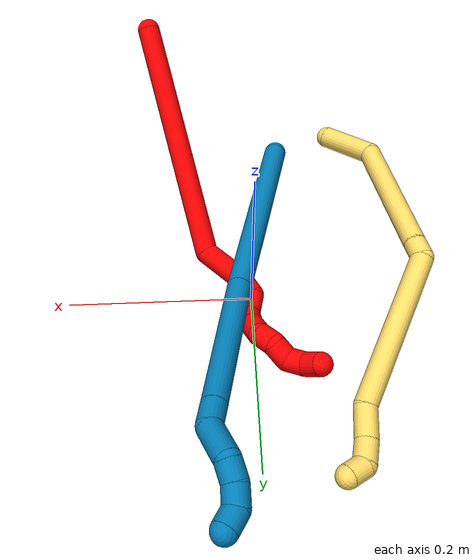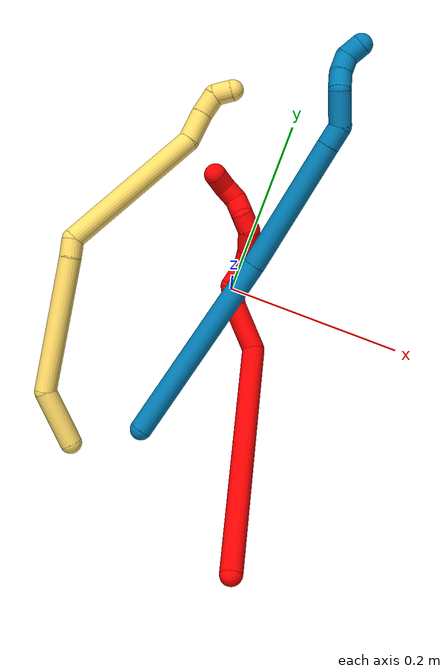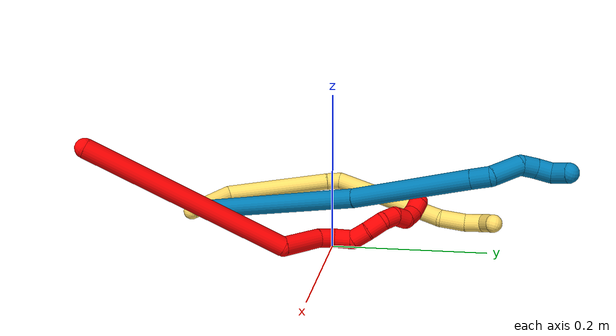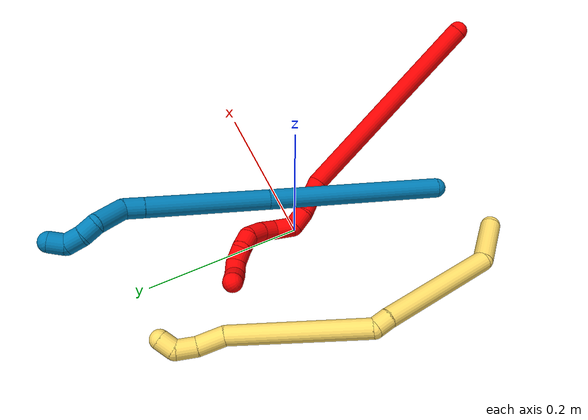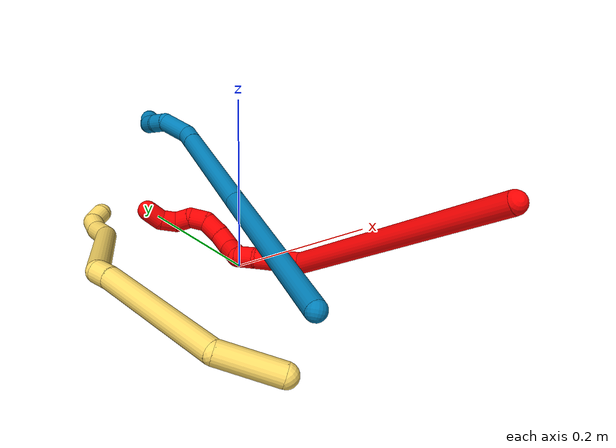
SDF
<sdf version="1.7">
 <world name="default">
  <model name="2">
   <static>0</static>
   <link name="2">
    <collision name="collision-cylinder-e_1_1_4">
     <pose>-0.055804 0.05668 -0.109234 -2.66295 -0.425722 1.44984</pose>
     <geometry><cylinder><radius>0.0125</radius><length>0.27025</length></cylinder></geometry>
     <surface>
      <friction><ode><mu>1.16</mu><mu2>1.16</mu2><slip1>0</slip1><slip2>0</slip2></ode></friction>
      <contact><ode><kp>1e+06</kp><kd>1</kd><max_vel>0</max_vel><min_depth>0.001</min_depth></ode></contact>
     </surface>
    </collision>
    <visual name="visual-cylinder-e_1_1_4">
     <pose>-0.055804 0.05668 -0.109234 -2.66295 -0.425722 1.44984</pose>
     <geometry><cylinder><radius>0.0125</radius><length>0.27025</length></cylinder></geometry>
     <material><ambient>1 0 0 1</ambient></material>
    </visual>
    <collision name="collision-cylinder-e_2_4_5">
     <pose>-0.126371 0.135037 -0.224463 -1.84061 -0.580877 0.748519</pose>
     <geometry><cylinder><radius>0.0125</radius><length>0.053807</length></cylinder></geometry>
     <surface>
      <friction><ode><mu>1.16</mu><mu2>1.16</mu2><slip1>0</slip1><slip2>0</slip2></ode></friction>
      <contact><ode><kp>1e+06</kp><kd>1</kd><max_vel>0</max_vel><min_depth>0.001</min_depth></ode></contact>
     </surface>
    </collision>
    <visual name="visual-cylinder-e_2_4_5">
     <pose>-0.126371 0.135037 -0.224463 -1.84061 -0.580877 0.748519</pose>
     <geometry><cylinder><radius>0.0125</radius><length>0.053807</length></cylinder></geometry>
     <material><ambient>1 0 0 1</ambient></material>
    </visual>
    <collision name="collision-cylinder-e_3_5_6">
     <pose>-0.146359 0.165475 -0.23595 -2.13067 -0.467871 0.813199</pose>
     <geometry><cylinder><radius>0.0125</radius><length>0.023171</length></cylinder></geometry>
     <surface>
      <friction><ode><mu>1.16</mu><mu2>1.16</mu2><slip1>0</slip1><slip2>0</slip2></ode></friction>
      <contact><ode><kp>1e+06</kp><kd>1</kd><max_vel>0</max_vel><min_depth>0.001</min_depth></ode></contact>
     </surface>
    </collision>
    <visual name="visual-cylinder-e_3_5_6">
     <pose>-0.146359 0.165475 -0.23595 -2.13067 -0.467871 0.813199</pose>
     <geometry><cylinder><radius>0.0125</radius><length>0.023171</length></cylinder></geometry>
     <material><ambient>1 0 0 1</ambient></material>
    </visual>
    <collision name="collision-cylinder-e_4_6_7">
     <pose>-0.148529 0.182412 -0.250941 -2.43099 0.239041 -0.626034</pose>
     <geometry><cylinder><radius>0.0125</radius><length>0.0258</length></cylinder></geometry>
     <surface>
      <friction><ode><mu>1.16</mu><mu2>1.16</mu2><slip1>0</slip1><slip2>0</slip2></ode></friction>
      <contact><ode><kp>1e+06</kp><kd>1</kd><max_vel>0</max_vel><min_depth>0.001</min_depth></ode></contact>
     </surface>
    </collision>
    <visual name="visual-cylinder-e_4_6_7">
     <pose>-0.148529 0.182412 -0.250941 -2.43099 0.239041 -0.626034</pose>
     <geometry><cylinder><radius>0.0125</radius><length>0.0258</length></cylinder></geometry>
     <material><ambient>1 0 0 1</ambient></material>
    </visual>
    <collision name="collision-cylinder-e_5_7_8">
     <pose>-0.14301 0.201345 -0.262805 -1.78715 0.220135 -0.273173</pose>
     <geometry><cylinder><radius>0.0125</radius><length>0.022574</length></cylinder></geometry>
     <surface>
      <friction><ode><mu>1.16</mu><mu2>1.16</mu2><slip1>0</slip1><slip2>0</slip2></ode></friction>
      <contact><ode><kp>1e+06</kp><kd>1</kd><max_vel>0</max_vel><min_depth>0.001</min_depth></ode></contact>
     </surface>
    </collision>
    <visual name="visual-cylinder-e_5_7_8">
     <pose>-0.14301 0.201345 -0.262805 -1.78715 0.220135 -0.273173</pose>
     <geometry><cylinder><radius>0.0125</radius><length>0.022574</length></cylinder></geometry>
     <material><ambient>1 0 0 1</ambient></material>
    </visual>
    <collision name="collision-cylinder-e_6_8_9">
     <pose>-0.139883 0.223964 -0.266607 -1.69142 0.055409 -0.062526</pose>
     <geometry><cylinder><radius>0.0125</radius><length>0.023932</length></cylinder></geometry>
     <surface>
      <friction><ode><mu>1.16</mu><mu2>1.16</mu2><slip1>0</slip1><slip2>0</slip2></ode></friction>
      <contact><ode><kp>1e+06</kp><kd>1</kd><max_vel>0</max_vel><min_depth>0.001</min_depth></ode></contact>
     </surface>
    </collision>
    <visual name="visual-cylinder-e_6_8_9">
     <pose>-0.139883 0.223964 -0.266607 -1.69142 0.055409 -0.062526</pose>
     <geometry><cylinder><radius>0.0125</radius><length>0.023932</length></cylinder></geometry>
     <material><ambient>1 0 0 1</ambient></material>
    </visual>
    <collision name="collision-cylinder-e_7_9_10">
     <pose>-0.143989 0.244646 -0.269354 -1.71808 -0.490996 0.565375</pose>
     <geometry><cylinder><radius>0.0125</radius><length>0.020225</length></cylinder></geometry>
     <surface>
      <friction><ode><mu>1.16</mu><mu2>1.16</mu2><slip1>0</slip1><slip2>0</slip2></ode></friction>
      <contact><ode><kp>1e+06</kp><kd>1</kd><max_vel>0</max_vel><min_depth>0.001</min_depth></ode></contact>
     </surface>
    </collision>
    <visual name="visual-cylinder-e_7_9_10">
     <pose>-0.143989 0.244646 -0.269354 -1.71808 -0.490996 0.565375</pose>
     <geometry><cylinder><radius>0.0125</radius><length>0.020225</length></cylinder></geometry>
     <material><ambient>1 0 0 1</ambient></material>
    </visual>
    <collision name="collision-cylinder-e_8_10_11">
     <pose>-0.155801 0.258759 -0.275455 -2.30686 -0.77872 1.49326</pose>
     <geometry><cylinder><radius>0.0125</radius><length>0.02006</length></cylinder></geometry>
     <surface>
      <friction><ode><mu>1.16</mu><mu2>1.16</mu2><slip1>0</slip1><slip2>0</slip2></ode></friction>
      <contact><ode><kp>1e+06</kp><kd>1</kd><max_vel>0</max_vel><min_depth>0.001</min_depth></ode></contact>
     </surface>
    </collision>
    <visual name="visual-cylinder-e_8_10_11">
     <pose>-0.155801 0.258759 -0.275455 -2.30686 -0.77872 1.49326</pose>
     <geometry><cylinder><radius>0.0125</radius><length>0.02006</length></cylinder></geometry>
     <material><ambient>1 0 0 1</ambient></material>
    </visual>
    <collision name="collision-cylinder-e_9_11_12">
     <pose>-0.169163 0.271671 -0.278752 -1.37694 -0.682848 0.568869</pose>
     <geometry><cylinder><radius>0.0125</radius><length>0.020023</length></cylinder></geometry>
     <surface>
      <friction><ode><mu>1.16</mu><mu2>1.16</mu2><slip1>0</slip1><slip2>0</slip2></ode></friction>
      <contact><ode><kp>1e+06</kp><kd>1</kd><max_vel>0</max_vel><min_depth>0.001</min_depth></ode></contact>
     </surface>
    </collision>
    <visual name="visual-cylinder-e_9_11_12">
     <pose>-0.169163 0.271671 -0.278752 -1.37694 -0.682848 0.568869</pose>
     <geometry><cylinder><radius>0.0125</radius><length>0.020023</length></cylinder></geometry>
     <material><ambient>1 0 0 1</ambient></material>
    </visual>
    <collision name="collision-cylinder-e_10_12_2">
     <pose>-0.177759 0.288269 -0.273279 -1.15378 -0.228027 0.148756</pose>
     <geometry><cylinder><radius>0.0125</radius><length>0.020159</length></cylinder></geometry>
     <surface>
      <friction><ode><mu>1.16</mu><mu2>1.16</mu2><slip1>0</slip1><slip2>0</slip2></ode></friction>
      <contact><ode><kp>1e+06</kp><kd>1</kd><max_vel>0</max_vel><min_depth>0.001</min_depth></ode></contact>
     </surface>
    </collision>
    <visual name="visual-cylinder-e_10_12_2">
     <pose>-0.177759 0.288269 -0.273279 -1.15378 -0.228027 0.148756</pose>
     <geometry><cylinder><radius>0.0125</radius><length>0.020159</length></cylinder></geometry>
     <material><ambient>1 0 0 1</ambient></material>
    </visual>
    <collision name="collision-sphere-2">
     <pose>-0.180038 0.297247 -0.269302 0 -0 0</pose>
     <geometry><sphere><radius>0.0125</radius></sphere></geometry>
     <surface>
      <friction><ode><mu>1.16</mu><mu2>1.16</mu2><slip1>0</slip1><slip2>0</slip2></ode></friction>
      <contact><ode><kp>1e+06</kp><kd>1</kd><max_vel>0</max_vel><min_depth>0.001</min_depth></ode></contact>
     </surface>
    </collision>
    <visual name="visual-sphere-2">
     <pose>-0.180038 0.297247 -0.269302 0 -0 0</pose>
     <geometry><sphere><radius>0.0125</radius></sphere></geometry>
     <material><ambient>1 0 0 1</ambient></material>
    </visual>
    <collision name="collision-sphere-12">
     <pose>-0.175481 0.279292 -0.277256 0 -0 0</pose>
     <geometry><sphere><radius>0.0125</radius></sphere></geometry>
     <surface>
      <friction><ode><mu>1.16</mu><mu2>1.16</mu2><slip1>0</slip1><slip2>0</slip2></ode></friction>
      <contact><ode><kp>1e+06</kp><kd>1</kd><max_vel>0</max_vel><min_depth>0.001</min_depth></ode></contact>
     </surface>
    </collision>
    <visual name="visual-sphere-12">
     <pose>-0.175481 0.279292 -0.277256 0 -0 0</pose>
     <geometry><sphere><radius>0.0125</radius></sphere></geometry>
     <material><ambient>1 0 0 1</ambient></material>
    </visual>
    <collision name="collision-sphere-11">
     <pose>-0.162846 0.26405 -0.280249 0 -0 0</pose>
     <geometry><sphere><radius>0.0125</radius></sphere></geometry>
     <surface>
      <friction><ode><mu>1.16</mu><mu2>1.16</mu2><slip1>0</slip1><slip2>0</slip2></ode></friction>
      <contact><ode><kp>1e+06</kp><kd>1</kd><max_vel>0</max_vel><min_depth>0.001</min_depth></ode></contact>
     </surface>
    </collision>
    <visual name="visual-sphere-11">
     <pose>-0.162846 0.26405 -0.280249 0 -0 0</pose>
     <geometry><sphere><radius>0.0125</radius></sphere></geometry>
     <material><ambient>1 0 0 1</ambient></material>
    </visual>
    <collision name="collision-sphere-10">
     <pose>-0.148757 0.253468 -0.270662 0 -0 0</pose>
     <geometry><sphere><radius>0.0125</radius></sphere></geometry>
     <surface>
      <friction><ode><mu>1.16</mu><mu2>1.16</mu2><slip1>0</slip1><slip2>0</slip2></ode></friction>
      <contact><ode><kp>1e+06</kp><kd>1</kd><max_vel>0</max_vel><min_depth>0.001</min_depth></ode></contact>
     </surface>
    </collision>
    <visual name="visual-sphere-10">
     <pose>-0.148757 0.253468 -0.270662 0 -0 0</pose>
     <geometry><sphere><radius>0.0125</radius></sphere></geometry>
     <material><ambient>1 0 0 1</ambient></material>
    </visual>
    <collision name="collision-sphere-9">
     <pose>-0.13922 0.235825 -0.268045 0 -0 0</pose>
     <geometry><sphere><radius>0.0125</radius></sphere></geometry>
     <surface>
      <friction><ode><mu>1.16</mu><mu2>1.16</mu2><slip1>0</slip1><slip2>0</slip2></ode></friction>
      <contact><ode><kp>1e+06</kp><kd>1</kd><max_vel>0</max_vel><min_depth>0.001</min_depth></ode></contact>
     </surface>
    </collision>
    <visual name="visual-sphere-9">
     <pose>-0.13922 0.235825 -0.268045 0 -0 0</pose>
     <geometry><sphere><radius>0.0125</radius></sphere></geometry>
     <material><ambient>1 0 0 1</ambient></material>
    </visual>
    <collision name="collision-sphere-4">
     <pose>-0.111607 0.11336 -0.218468 0 -0 0</pose>
     <geometry><sphere><radius>0.0125</radius></sphere></geometry>
     <surface>
      <friction><ode><mu>1.16</mu><mu2>1.16</mu2><slip1>0</slip1><slip2>0</slip2></ode></friction>
      <contact><ode><kp>1e+06</kp><kd>1</kd><max_vel>0</max_vel><min_depth>0.001</min_depth></ode></contact>
     </surface>
    </collision>
    <visual name="visual-sphere-4">
     <pose>-0.111607 0.11336 -0.218468 0 -0 0</pose>
     <geometry><sphere><radius>0.0125</radius></sphere></geometry>
     <material><ambient>1 0 0 1</ambient></material>
    </visual>
    <collision name="collision-sphere-1">
     <geometry><sphere><radius>0.0125</radius></sphere></geometry>
     <surface>
      <friction><ode><mu>1.16</mu><mu2>1.16</mu2><slip1>0</slip1><slip2>0</slip2></ode></friction>
      <contact><ode><kp>1e+06</kp><kd>1</kd><max_vel>0</max_vel><min_depth>0.001</min_depth></ode></contact>
     </surface>
    </collision>
    <visual name="visual-sphere-1">
     <geometry><sphere><radius>0.0125</radius></sphere></geometry>
     <material><ambient>1 0 0 1</ambient></material>
    </visual>
    <collision name="collision-sphere-8">
     <pose>-0.140546 0.212103 -0.26517 0 -0 0</pose>
     <geometry><sphere><radius>0.0125</radius></sphere></geometry>
     <surface>
      <friction><ode><mu>1.16</mu><mu2>1.16</mu2><slip1>0</slip1><slip2>0</slip2></ode></friction>
      <contact><ode><kp>1e+06</kp><kd>1</kd><max_vel>0</max_vel><min_depth>0.001</min_depth></ode></contact>
     </surface>
    </collision>
    <visual name="visual-sphere-8">
     <pose>-0.140546 0.212103 -0.26517 0 -0 0</pose>
     <geometry><sphere><radius>0.0125</radius></sphere></geometry>
     <material><ambient>1 0 0 1</ambient></material>
    </visual>
    <collision name="collision-sphere-5">
     <pose>-0.141134 0.156714 -0.230458 0 -0 0</pose>
     <geometry><sphere><radius>0.0125</radius></sphere></geometry>
     <surface>
      <friction><ode><mu>1.16</mu><mu2>1.16</mu2><slip1>0</slip1><slip2>0</slip2></ode></friction>
      <contact><ode><kp>1e+06</kp><kd>1</kd><max_vel>0</max_vel><min_depth>0.001</min_depth></ode></contact>
     </surface>
    </collision>
    <visual name="visual-sphere-5">
     <pose>-0.141134 0.156714 -0.230458 0 -0 0</pose>
     <geometry><sphere><radius>0.0125</radius></sphere></geometry>
     <material><ambient>1 0 0 1</ambient></material>
    </visual>
    <collision name="collision-sphere-6">
     <pose>-0.151584 0.174237 -0.241441 0 -0 0</pose>
     <geometry><sphere><radius>0.0125</radius></sphere></geometry>
     <surface>
      <friction><ode><mu>1.16</mu><mu2>1.16</mu2><slip1>0</slip1><slip2>0</slip2></ode></friction>
      <contact><ode><kp>1e+06</kp><kd>1</kd><max_vel>0</max_vel><min_depth>0.001</min_depth></ode></contact>
     </surface>
    </collision>
    <visual name="visual-sphere-6">
     <pose>-0.151584 0.174237 -0.241441 0 -0 0</pose>
     <geometry><sphere><radius>0.0125</radius></sphere></geometry>
     <material><ambient>1 0 0 1</ambient></material>
    </visual>
    <collision name="collision-sphere-7">
     <pose>-0.145475 0.190587 -0.260441 0 -0 0</pose>
     <geometry><sphere><radius>0.0125</radius></sphere></geometry>
     <surface>
      <friction><ode><mu>1.16</mu><mu2>1.16</mu2><slip1>0</slip1><slip2>0</slip2></ode></friction>
      <contact><ode><kp>1e+06</kp><kd>1</kd><max_vel>0</max_vel><min_depth>0.001</min_depth></ode></contact>
     </surface>
    </collision>
    <visual name="visual-sphere-7">
     <pose>-0.145475 0.190587 -0.260441 0 -0 0</pose>
     <geometry><sphere><radius>0.0125</radius></sphere></geometry>
     <material><ambient>1 0 0 1</ambient></material>
    </visual>
    <inertial>
     <pose>-0.097376 0.124837 -0.175833 0 -0 0</pose>
     <mass>0.5</mass>
     <inertia>
      <ixx>0.001695</ixx>
      <ixy>0</ixy>
      <ixz>0</ixz>
      <iyy>0.001668</iyy>
      <iyz>0</iyz>
      <izz>-4.4e-05</izz>
     </inertia>
    </inertial>
   </link>
   <pose>0.106268 -0.285487 0.142715 0.739153 -0.54938 0.033987</pose>
  </model>
  <model name="5">
   <static>0</static>
   <link name="5">
    <collision name="collision-cylinder-e_1_1_4">
     <pose>-0.019994 0.015272 0.021809 -0.610896 -0.644107 0.209651</pose>
     <geometry><cylinder><radius>0.0125</radius><length>0.066592</length></cylinder></geometry>
     <surface>
      <friction><ode><mu>1.16</mu><mu2>1.16</mu2><slip1>0</slip1><slip2>0</slip2></ode></friction>
      <contact><ode><kp>1e+06</kp><kd>1</kd><max_vel>0</max_vel><min_depth>0.001</min_depth></ode></contact>
     </surface>
    </collision>
    <visual name="visual-cylinder-e_1_1_4">
     <pose>-0.019994 0.015272 0.021809 -0.610896 -0.644107 0.209651</pose>
     <geometry><cylinder><radius>0.0125</radius><length>0.066592</length></cylinder></geometry>
     <material><ambient>1 0.858824 0.4 1</ambient></material>
    </visual>
    <collision name="collision-cylinder-e_2_4_5">
     <pose>-0.056509 0.098153 0.075447 -1.1308 -0.217595 0.13839</pose>
     <geometry><cylinder><radius>0.0125</radius><length>0.153062</length></cylinder></geometry>
     <surface>
      <friction><ode><mu>1.16</mu><mu2>1.16</mu2><slip1>0</slip1><slip2>0</slip2></ode></friction>
      <contact><ode><kp>1e+06</kp><kd>1</kd><max_vel>0</max_vel><min_depth>0.001</min_depth></ode></contact>
     </surface>
    </collision>
    <visual name="visual-cylinder-e_2_4_5">
     <pose>-0.056509 0.098153 0.075447 -1.1308 -0.217595 0.13839</pose>
     <geometry><cylinder><radius>0.0125</radius><length>0.153062</length></cylinder></geometry>
     <material><ambient>1 0.858824 0.4 1</ambient></material>
    </visual>
    <collision name="collision-cylinder-e_3_5_6">
     <pose>-0.0762 0.175 0.111051 -1.18284 -0.307473 0.207398</pose>
     <geometry><cylinder><radius>0.0125</radius><length>0.020943</length></cylinder></geometry>
     <surface>
      <friction><ode><mu>1.16</mu><mu2>1.16</mu2><slip1>0</slip1><slip2>0</slip2></ode></friction>
      <contact><ode><kp>1e+06</kp><kd>1</kd><max_vel>0</max_vel><min_depth>0.001</min_depth></ode></contact>
     </surface>
    </collision>
    <visual name="visual-cylinder-e_3_5_6">
     <pose>-0.0762 0.175 0.111051 -1.18284 -0.307473 0.207398</pose>
     <geometry><cylinder><radius>0.0125</radius><length>0.020943</length></cylinder></geometry>
     <material><ambient>1 0.858824 0.4 1</ambient></material>
    </visual>
    <collision name="collision-cylinder-e_4_6_7">
     <pose>-0.0599 0.269412 0.104506 -1.69138 0.223145 -0.251532</pose>
     <geometry><cylinder><radius>0.0125</radius><length>0.175954</length></cylinder></geometry>
     <surface>
      <friction><ode><mu>1.16</mu><mu2>1.16</mu2><slip1>0</slip1><slip2>0</slip2></ode></friction>
      <contact><ode><kp>1e+06</kp><kd>1</kd><max_vel>0</max_vel><min_depth>0.001</min_depth></ode></contact>
     </surface>
    </collision>
    <visual name="visual-cylinder-e_4_6_7">
     <pose>-0.0599 0.269412 0.104506 -1.69138 0.223145 -0.251532</pose>
     <geometry><cylinder><radius>0.0125</radius><length>0.175954</length></cylinder></geometry>
     <material><ambient>1 0.858824 0.4 1</ambient></material>
    </visual>
    <collision name="collision-cylinder-e_5_7_8">
     <pose>-0.042034 0.37208 0.096019 -1.46636 -0.09089 0.081872</pose>
     <geometry><cylinder><radius>0.0125</radius><length>0.03533</length></cylinder></geometry>
     <surface>
      <friction><ode><mu>1.16</mu><mu2>1.16</mu2><slip1>0</slip1><slip2>0</slip2></ode></friction>
      <contact><ode><kp>1e+06</kp><kd>1</kd><max_vel>0</max_vel><min_depth>0.001</min_depth></ode></contact>
     </surface>
    </collision>
    <visual name="visual-cylinder-e_5_7_8">
     <pose>-0.042034 0.37208 0.096019 -1.46636 -0.09089 0.081872</pose>
     <geometry><cylinder><radius>0.0125</radius><length>0.03533</length></cylinder></geometry>
     <material><ambient>1 0.858824 0.4 1</ambient></material>
    </visual>
    <collision name="collision-cylinder-e_6_8_9">
     <pose>-0.042076 0.402228 0.100866 -1.33698 0.119503 -0.094425</pose>
     <geometry><cylinder><radius>0.0125</radius><length>0.026198</length></cylinder></geometry>
     <surface>
      <friction><ode><mu>1.16</mu><mu2>1.16</mu2><slip1>0</slip1><slip2>0</slip2></ode></friction>
      <contact><ode><kp>1e+06</kp><kd>1</kd><max_vel>0</max_vel><min_depth>0.001</min_depth></ode></contact>
     </surface>
    </collision>
    <visual name="visual-cylinder-e_6_8_9">
     <pose>-0.042076 0.402228 0.100866 -1.33698 0.119503 -0.094425</pose>
     <geometry><cylinder><radius>0.0125</radius><length>0.026198</length></cylinder></geometry>
     <material><ambient>1 0.858824 0.4 1</ambient></material>
    </visual>
    <collision name="collision-cylinder-e_7_9_2">
     <pose>-0.032092 0.421891 0.104086 -1.54138 0.876355 -0.853959</pose>
     <geometry><cylinder><radius>0.0125</radius><length>0.021922</length></cylinder></geometry>
     <surface>
      <friction><ode><mu>1.16</mu><mu2>1.16</mu2><slip1>0</slip1><slip2>0</slip2></ode></friction>
      <contact><ode><kp>1e+06</kp><kd>1</kd><max_vel>0</max_vel><min_depth>0.001</min_depth></ode></contact>
     </surface>
    </collision>
    <visual name="visual-cylinder-e_7_9_2">
     <pose>-0.032092 0.421891 0.104086 -1.54138 0.876355 -0.853959</pose>
     <geometry><cylinder><radius>0.0125</radius><length>0.021922</length></cylinder></geometry>
     <material><ambient>1 0.858824 0.4 1</ambient></material>
    </visual>
    <collision name="collision-sphere-2">
     <pose>-0.02367 0.428903 0.104292 0 -0 0</pose>
     <geometry><sphere><radius>0.0125</radius></sphere></geometry>
     <surface>
      <friction><ode><mu>1.16</mu><mu2>1.16</mu2><slip1>0</slip1><slip2>0</slip2></ode></friction>
      <contact><ode><kp>1e+06</kp><kd>1</kd><max_vel>0</max_vel><min_depth>0.001</min_depth></ode></contact>
     </surface>
    </collision>
    <visual name="visual-sphere-2">
     <pose>-0.02367 0.428903 0.104292 0 -0 0</pose>
     <geometry><sphere><radius>0.0125</radius></sphere></geometry>
     <material><ambient>1 0.858824 0.4 1</ambient></material>
    </visual>
    <collision name="collision-sphere-9">
     <pose>-0.040515 0.41488 0.10388 0 -0 0</pose>
     <geometry><sphere><radius>0.0125</radius></sphere></geometry>
     <surface>
      <friction><ode><mu>1.16</mu><mu2>1.16</mu2><slip1>0</slip1><slip2>0</slip2></ode></friction>
      <contact><ode><kp>1e+06</kp><kd>1</kd><max_vel>0</max_vel><min_depth>0.001</min_depth></ode></contact>
     </surface>
    </collision>
    <visual name="visual-sphere-9">
     <pose>-0.040515 0.41488 0.10388 0 -0 0</pose>
     <geometry><sphere><radius>0.0125</radius></sphere></geometry>
     <material><ambient>1 0.858824 0.4 1</ambient></material>
    </visual>
    <collision name="collision-sphere-4">
     <pose>-0.039987 0.030544 0.043618 0 -0 0</pose>
     <geometry><sphere><radius>0.0125</radius></sphere></geometry>
     <surface>
      <friction><ode><mu>1.16</mu><mu2>1.16</mu2><slip1>0</slip1><slip2>0</slip2></ode></friction>
      <contact><ode><kp>1e+06</kp><kd>1</kd><max_vel>0</max_vel><min_depth>0.001</min_depth></ode></contact>
     </surface>
    </collision>
    <visual name="visual-sphere-4">
     <pose>-0.039987 0.030544 0.043618 0 -0 0</pose>
     <geometry><sphere><radius>0.0125</radius></sphere></geometry>
     <material><ambient>1 0.858824 0.4 1</ambient></material>
    </visual>
    <collision name="collision-sphere-1">
     <geometry><sphere><radius>0.0125</radius></sphere></geometry>
     <surface>
      <friction><ode><mu>1.16</mu><mu2>1.16</mu2><slip1>0</slip1><slip2>0</slip2></ode></friction>
      <contact><ode><kp>1e+06</kp><kd>1</kd><max_vel>0</max_vel><min_depth>0.001</min_depth></ode></contact>
     </surface>
    </collision>
    <visual name="visual-sphere-1">
     <geometry><sphere><radius>0.0125</radius></sphere></geometry>
     <material><ambient>1 0.858824 0.4 1</ambient></material>
    </visual>
    <collision name="collision-sphere-8">
     <pose>-0.043638 0.389577 0.097853 0 -0 0</pose>
     <geometry><sphere><radius>0.0125</radius></sphere></geometry>
     <surface>
      <friction><ode><mu>1.16</mu><mu2>1.16</mu2><slip1>0</slip1><slip2>0</slip2></ode></friction>
      <contact><ode><kp>1e+06</kp><kd>1</kd><max_vel>0</max_vel><min_depth>0.001</min_depth></ode></contact>
     </surface>
    </collision>
    <visual name="visual-sphere-8">
     <pose>-0.043638 0.389577 0.097853 0 -0 0</pose>
     <geometry><sphere><radius>0.0125</radius></sphere></geometry>
     <material><ambient>1 0.858824 0.4 1</ambient></material>
    </visual>
    <collision name="collision-sphere-5">
     <pose>-0.073031 0.165762 0.107276 0 -0 0</pose>
     <geometry><sphere><radius>0.0125</radius></sphere></geometry>
     <surface>
      <friction><ode><mu>1.16</mu><mu2>1.16</mu2><slip1>0</slip1><slip2>0</slip2></ode></friction>
      <contact><ode><kp>1e+06</kp><kd>1</kd><max_vel>0</max_vel><min_depth>0.001</min_depth></ode></contact>
     </surface>
    </collision>
    <visual name="visual-sphere-5">
     <pose>-0.073031 0.165762 0.107276 0 -0 0</pose>
     <geometry><sphere><radius>0.0125</radius></sphere></geometry>
     <material><ambient>1 0.858824 0.4 1</ambient></material>
    </visual>
    <collision name="collision-sphere-6">
     <pose>-0.079369 0.184239 0.114827 0 -0 0</pose>
     <geometry><sphere><radius>0.0125</radius></sphere></geometry>
     <surface>
      <friction><ode><mu>1.16</mu><mu2>1.16</mu2><slip1>0</slip1><slip2>0</slip2></ode></friction>
      <contact><ode><kp>1e+06</kp><kd>1</kd><max_vel>0</max_vel><min_depth>0.001</min_depth></ode></contact>
     </surface>
    </collision>
    <visual name="visual-sphere-6">
     <pose>-0.079369 0.184239 0.114827 0 -0 0</pose>
     <geometry><sphere><radius>0.0125</radius></sphere></geometry>
     <material><ambient>1 0.858824 0.4 1</ambient></material>
    </visual>
    <collision name="collision-sphere-7">
     <pose>-0.040431 0.354584 0.094185 0 -0 0</pose>
     <geometry><sphere><radius>0.0125</radius></sphere></geometry>
     <surface>
      <friction><ode><mu>1.16</mu><mu2>1.16</mu2><slip1>0</slip1><slip2>0</slip2></ode></friction>
      <contact><ode><kp>1e+06</kp><kd>1</kd><max_vel>0</max_vel><min_depth>0.001</min_depth></ode></contact>
     </surface>
    </collision>
    <visual name="visual-sphere-7">
     <pose>-0.040431 0.354584 0.094185 0 -0 0</pose>
     <geometry><sphere><radius>0.0125</radius></sphere></geometry>
     <material><ambient>1 0.858824 0.4 1</ambient></material>
    </visual>
    <inertial>
     <pose>-0.050814 0.200082 0.084062 0 -0 0</pose>
     <mass>0.5</mass>
     <inertia>
      <ixx>0.000693</ixx>
      <ixy>0</ixy>
      <ixz>0</ixz>
      <iyy>0.000102</iyy>
      <iyz>0</iyz>
      <izz>-0.00075</izz>
     </inertia>
    </inertial>
   </link>
   <pose>-0.108418 -0.228621 0.011497 -0.196736 -0.425078 -0.133257</pose>
  </model>
  <model name="9">
   <static>0</static>
   <link name="9">
    <collision name="collision-cylinder-e_1_1_4">
     <pose>0.019587 0.090586 0.062039 -0.970306 0.176539 -0.093242</pose>
     <geometry><cylinder><radius>0.0125</radius><length>0.223054</length></cylinder></geometry>
     <surface>
      <friction><ode><mu>1.16</mu><mu2>1.16</mu2><slip1>0</slip1><slip2>0</slip2></ode></friction>
      <contact><ode><kp>1e+06</kp><kd>1</kd><max_vel>0</max_vel><min_depth>0.001</min_depth></ode></contact>
     </surface>
    </collision>
    <visual name="visual-cylinder-e_1_1_4">
     <pose>0.019587 0.090586 0.062039 -0.970306 0.176539 -0.093242</pose>
     <geometry><cylinder><radius>0.0125</radius><length>0.223054</length></cylinder></geometry>
     <material><ambient>0 0.490196 0.709804 1</ambient></material>
    </visual>
    <collision name="collision-cylinder-e_2_4_5">
     <pose>0.046804 0.242105 0.16941 -0.931155 0.100131 -0.050339</pose>
     <geometry><cylinder><radius>0.0125</radius><length>0.152658</length></cylinder></geometry>
     <surface>
      <friction><ode><mu>1.16</mu><mu2>1.16</mu2><slip1>0</slip1><slip2>0</slip2></ode></friction>
      <contact><ode><kp>1e+06</kp><kd>1</kd><max_vel>0</max_vel><min_depth>0.001</min_depth></ode></contact>
     </surface>
    </collision>
    <visual name="visual-cylinder-e_2_4_5">
     <pose>0.046804 0.242105 0.16941 -0.931155 0.100131 -0.050339</pose>
     <geometry><cylinder><radius>0.0125</radius><length>0.152658</length></cylinder></geometry>
     <material><ambient>0 0.490196 0.709804 1</ambient></material>
    </visual>
    <collision name="collision-cylinder-e_3_5_6">
     <pose>0.055862 0.312738 0.221887 -0.936004 0.117992 -0.059691</pose>
     <geometry><cylinder><radius>0.0125</radius><length>0.024263</length></cylinder></geometry>
     <surface>
      <friction><ode><mu>1.16</mu><mu2>1.16</mu2><slip1>0</slip1><slip2>0</slip2></ode></friction>
      <contact><ode><kp>1e+06</kp><kd>1</kd><max_vel>0</max_vel><min_depth>0.001</min_depth></ode></contact>
     </surface>
    </collision>
    <visual name="visual-cylinder-e_3_5_6">
     <pose>0.055862 0.312738 0.221887 -0.936004 0.117992 -0.059691</pose>
     <geometry><cylinder><radius>0.0125</radius><length>0.024263</length></cylinder></geometry>
     <material><ambient>0 0.490196 0.709804 1</ambient></material>
    </visual>
    <collision name="collision-cylinder-e_4_6_7">
     <pose>0.048871 0.33852 0.236436 -1.13932 -0.443894 0.287084</pose>
     <geometry><cylinder><radius>0.0125</radius><length>0.039208</length></cylinder></geometry>
     <surface>
      <friction><ode><mu>1.16</mu><mu2>1.16</mu2><slip1>0</slip1><slip2>0</slip2></ode></friction>
      <contact><ode><kp>1e+06</kp><kd>1</kd><max_vel>0</max_vel><min_depth>0.001</min_depth></ode></contact>
     </surface>
    </collision>
    <visual name="visual-cylinder-e_4_6_7">
     <pose>0.048871 0.33852 0.236436 -1.13932 -0.443894 0.287084</pose>
     <geometry><cylinder><radius>0.0125</radius><length>0.039208</length></cylinder></geometry>
     <material><ambient>0 0.490196 0.709804 1</ambient></material>
    </visual>
    <collision name="collision-cylinder-e_5_7_8">
     <pose>0.039638 0.3646 0.243766 -1.57817 -0.081201 0.081802</pose>
     <geometry><cylinder><radius>0.0125</radius><length>0.020065</length></cylinder></geometry>
     <surface>
      <friction><ode><mu>1.16</mu><mu2>1.16</mu2><slip1>0</slip1><slip2>0</slip2></ode></friction>
      <contact><ode><kp>1e+06</kp><kd>1</kd><max_vel>0</max_vel><min_depth>0.001</min_depth></ode></contact>
     </surface>
    </collision>
    <visual name="visual-cylinder-e_5_7_8">
     <pose>0.039638 0.3646 0.243766 -1.57817 -0.081201 0.081802</pose>
     <geometry><cylinder><radius>0.0125</radius><length>0.020065</length></cylinder></geometry>
     <material><ambient>0 0.490196 0.709804 1</ambient></material>
    </visual>
    <collision name="collision-cylinder-e_6_8_9">
     <pose>0.040497 0.384644 0.244703 -1.47046 0.164252 -0.148607</pose>
     <geometry><cylinder><radius>0.0125</radius><length>0.020466</length></cylinder></geometry>
     <surface>
      <friction><ode><mu>1.16</mu><mu2>1.16</mu2><slip1>0</slip1><slip2>0</slip2></ode></friction>
      <contact><ode><kp>1e+06</kp><kd>1</kd><max_vel>0</max_vel><min_depth>0.001</min_depth></ode></contact>
     </surface>
    </collision>
    <visual name="visual-cylinder-e_6_8_9">
     <pose>0.040497 0.384644 0.244703 -1.47046 0.164252 -0.148607</pose>
     <geometry><cylinder><radius>0.0125</radius><length>0.020466</length></cylinder></geometry>
     <material><ambient>0 0.490196 0.709804 1</ambient></material>
    </visual>
    <collision name="collision-cylinder-e_7_9_2">
     <pose>0.046379 0.401479 0.251964 -0.82692 0.427888 -0.19008</pose>
     <geometry><cylinder><radius>0.0125</radius><length>0.020287</length></cylinder></geometry>
     <surface>
      <friction><ode><mu>1.16</mu><mu2>1.16</mu2><slip1>0</slip1><slip2>0</slip2></ode></friction>
      <contact><ode><kp>1e+06</kp><kd>1</kd><max_vel>0</max_vel><min_depth>0.001</min_depth></ode></contact>
     </surface>
    </collision>
    <visual name="visual-cylinder-e_7_9_2">
     <pose>0.046379 0.401479 0.251964 -0.82692 0.427888 -0.19008</pose>
     <geometry><cylinder><radius>0.0125</radius><length>0.020287</length></cylinder></geometry>
     <material><ambient>0 0.490196 0.709804 1</ambient></material>
    </visual>
    <collision name="collision-sphere-2">
     <pose>0.050588 0.40827 0.258213 0 -0 0</pose>
     <geometry><sphere><radius>0.0125</radius></sphere></geometry>
     <surface>
      <friction><ode><mu>1.16</mu><mu2>1.16</mu2><slip1>0</slip1><slip2>0</slip2></ode></friction>
      <contact><ode><kp>1e+06</kp><kd>1</kd><max_vel>0</max_vel><min_depth>0.001</min_depth></ode></contact>
     </surface>
    </collision>
    <visual name="visual-sphere-2">
     <pose>0.050588 0.40827 0.258213 0 -0 0</pose>
     <geometry><sphere><radius>0.0125</radius></sphere></geometry>
     <material><ambient>0 0.490196 0.709804 1</ambient></material>
    </visual>
    <collision name="collision-sphere-9">
     <pose>0.04217 0.394688 0.245714 0 -0 0</pose>
     <geometry><sphere><radius>0.0125</radius></sphere></geometry>
     <surface>
      <friction><ode><mu>1.16</mu><mu2>1.16</mu2><slip1>0</slip1><slip2>0</slip2></ode></friction>
      <contact><ode><kp>1e+06</kp><kd>1</kd><max_vel>0</max_vel><min_depth>0.001</min_depth></ode></contact>
     </surface>
    </collision>
    <visual name="visual-sphere-9">
     <pose>0.04217 0.394688 0.245714 0 -0 0</pose>
     <geometry><sphere><radius>0.0125</radius></sphere></geometry>
     <material><ambient>0 0.490196 0.709804 1</ambient></material>
    </visual>
    <collision name="collision-sphere-4">
     <pose>0.039173 0.181172 0.124077 0 -0 0</pose>
     <geometry><sphere><radius>0.0125</radius></sphere></geometry>
     <surface>
      <friction><ode><mu>1.16</mu><mu2>1.16</mu2><slip1>0</slip1><slip2>0</slip2></ode></friction>
      <contact><ode><kp>1e+06</kp><kd>1</kd><max_vel>0</max_vel><min_depth>0.001</min_depth></ode></contact>
     </surface>
    </collision>
    <visual name="visual-sphere-4">
     <pose>0.039173 0.181172 0.124077 0 -0 0</pose>
     <geometry><sphere><radius>0.0125</radius></sphere></geometry>
     <material><ambient>0 0.490196 0.709804 1</ambient></material>
    </visual>
    <collision name="collision-sphere-1">
     <geometry><sphere><radius>0.0125</radius></sphere></geometry>
     <surface>
      <friction><ode><mu>1.16</mu><mu2>1.16</mu2><slip1>0</slip1><slip2>0</slip2></ode></friction>
      <contact><ode><kp>1e+06</kp><kd>1</kd><max_vel>0</max_vel><min_depth>0.001</min_depth></ode></contact>
     </surface>
    </collision>
    <visual name="visual-sphere-1">
     <geometry><sphere><radius>0.0125</radius></sphere></geometry>
     <material><ambient>0 0.490196 0.709804 1</ambient></material>
    </visual>
    <collision name="collision-sphere-8">
     <pose>0.038824 0.374599 0.243692 0 -0 0</pose>
     <geometry><sphere><radius>0.0125</radius></sphere></geometry>
     <surface>
      <friction><ode><mu>1.16</mu><mu2>1.16</mu2><slip1>0</slip1><slip2>0</slip2></ode></friction>
      <contact><ode><kp>1e+06</kp><kd>1</kd><max_vel>0</max_vel><min_depth>0.001</min_depth></ode></contact>
     </surface>
    </collision>
    <visual name="visual-sphere-8">
     <pose>0.038824 0.374599 0.243692 0 -0 0</pose>
     <geometry><sphere><radius>0.0125</radius></sphere></geometry>
     <material><ambient>0 0.490196 0.709804 1</ambient></material>
    </visual>
    <collision name="collision-sphere-5">
     <pose>0.054434 0.303038 0.214744 0 -0 0</pose>
     <geometry><sphere><radius>0.0125</radius></sphere></geometry>
     <surface>
      <friction><ode><mu>1.16</mu><mu2>1.16</mu2><slip1>0</slip1><slip2>0</slip2></ode></friction>
      <contact><ode><kp>1e+06</kp><kd>1</kd><max_vel>0</max_vel><min_depth>0.001</min_depth></ode></contact>
     </surface>
    </collision>
    <visual name="visual-sphere-5">
     <pose>0.054434 0.303038 0.214744 0 -0 0</pose>
     <geometry><sphere><radius>0.0125</radius></sphere></geometry>
     <material><ambient>0 0.490196 0.709804 1</ambient></material>
    </visual>
    <collision name="collision-sphere-6">
     <pose>0.05729 0.322438 0.229031 0 -0 0</pose>
     <geometry><sphere><radius>0.0125</radius></sphere></geometry>
     <surface>
      <friction><ode><mu>1.16</mu><mu2>1.16</mu2><slip1>0</slip1><slip2>0</slip2></ode></friction>
      <contact><ode><kp>1e+06</kp><kd>1</kd><max_vel>0</max_vel><min_depth>0.001</min_depth></ode></contact>
     </surface>
    </collision>
    <visual name="visual-sphere-6">
     <pose>0.05729 0.322438 0.229031 0 -0 0</pose>
     <geometry><sphere><radius>0.0125</radius></sphere></geometry>
     <material><ambient>0 0.490196 0.709804 1</ambient></material>
    </visual>
    <collision name="collision-sphere-7">
     <pose>0.040451 0.354601 0.24384 0 -0 0</pose>
     <geometry><sphere><radius>0.0125</radius></sphere></geometry>
     <surface>
      <friction><ode><mu>1.16</mu><mu2>1.16</mu2><slip1>0</slip1><slip2>0</slip2></ode></friction>
      <contact><ode><kp>1e+06</kp><kd>1</kd><max_vel>0</max_vel><min_depth>0.001</min_depth></ode></contact>
     </surface>
    </collision>
    <visual name="visual-sphere-7">
     <pose>0.040451 0.354601 0.24384 0 -0 0</pose>
     <geometry><sphere><radius>0.0125</radius></sphere></geometry>
     <material><ambient>0 0.490196 0.709804 1</ambient></material>
    </visual>
    <inertial>
     <pose>0.034701 0.202716 0.138728 0 -0 0</pose>
     <mass>0.5</mass>
     <inertia>
      <ixx>0.001132</ixx>
      <ixy>0</ixy>
      <ixz>0</ixz>
      <iyy>0.000658</iyy>
      <iyz>0</iyz>
      <izz>-0.001183</izz>
     </inertia>
    </inertial>
   </link>
   <pose>-0.038669 -0.184766 0.034041 -0.308733 0.504793 0.053618</pose>
  </model>
 </world>
</sdf>
